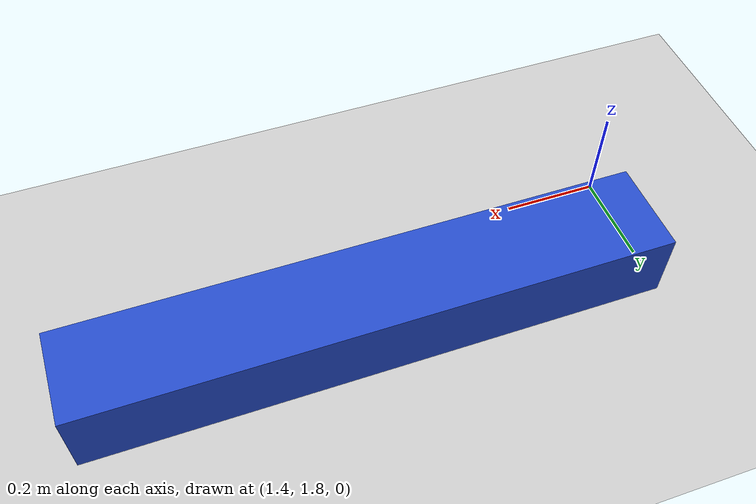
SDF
<?xml version="1.0" ?>
<sdf version="1.5">
  <world name="default">
    <!-- Reduced steps/sec -->
    <physics type='ode'>
      <!-- Values shoud be step_size = 0.001*F and time_up= 1000/F-->
      <max_step_size>0.002</max_step_size>
      <real_time_update_rate>500</real_time_update_rate>
    </physics>
    <!-- A global light source -->
    <include>
      <uri>model://sun</uri>
    </include>
    <!-- A ground plane -->
    <include>
      <uri>model://ground_plane</uri>
    </include>

    <model name="brick_1">
      <pose>2.0 2.0 0.05 0 0 0</pose>
      <include>
        <uri>model://brick_blue</uri>
      </include>
    </model>

  </world>
</sdf>

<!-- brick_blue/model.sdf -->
<sdf version="1.4">
<model name="brick_blue">
  <pose>0 0 0 0 0 0</pose>
    <link name="grab_here">
      <inertial>
        <mass>1e-5</mass>
        <inertia>
          <ixx>1e-5</ixx>
          <ixy>0.0</ixy>
          <ixz>0.0</ixz>
          <iyy>1e-5</iyy>
          <iyz>0.0</iyz>
          <izz>1e-5</izz>
        </inertia>
      </inertial>
      <collision name="collision">
        <geometry>
          <box>
            <size>1.2 0.2 0.2</size>
          </box>
        </geometry>
      </collision>
      <visual name="visual">
        <geometry>
          <box>
            <size>1.2 0.2 0.2</size>
          </box>
        </geometry>
        <material>
        	<script>
              <uri>file://media/materials/scripts/gazebo.material</uri>
              <name>Gazebo/Blue</name>
            </script>
        </material>
      </visual>
    </link>
  </model>
</sdf>
